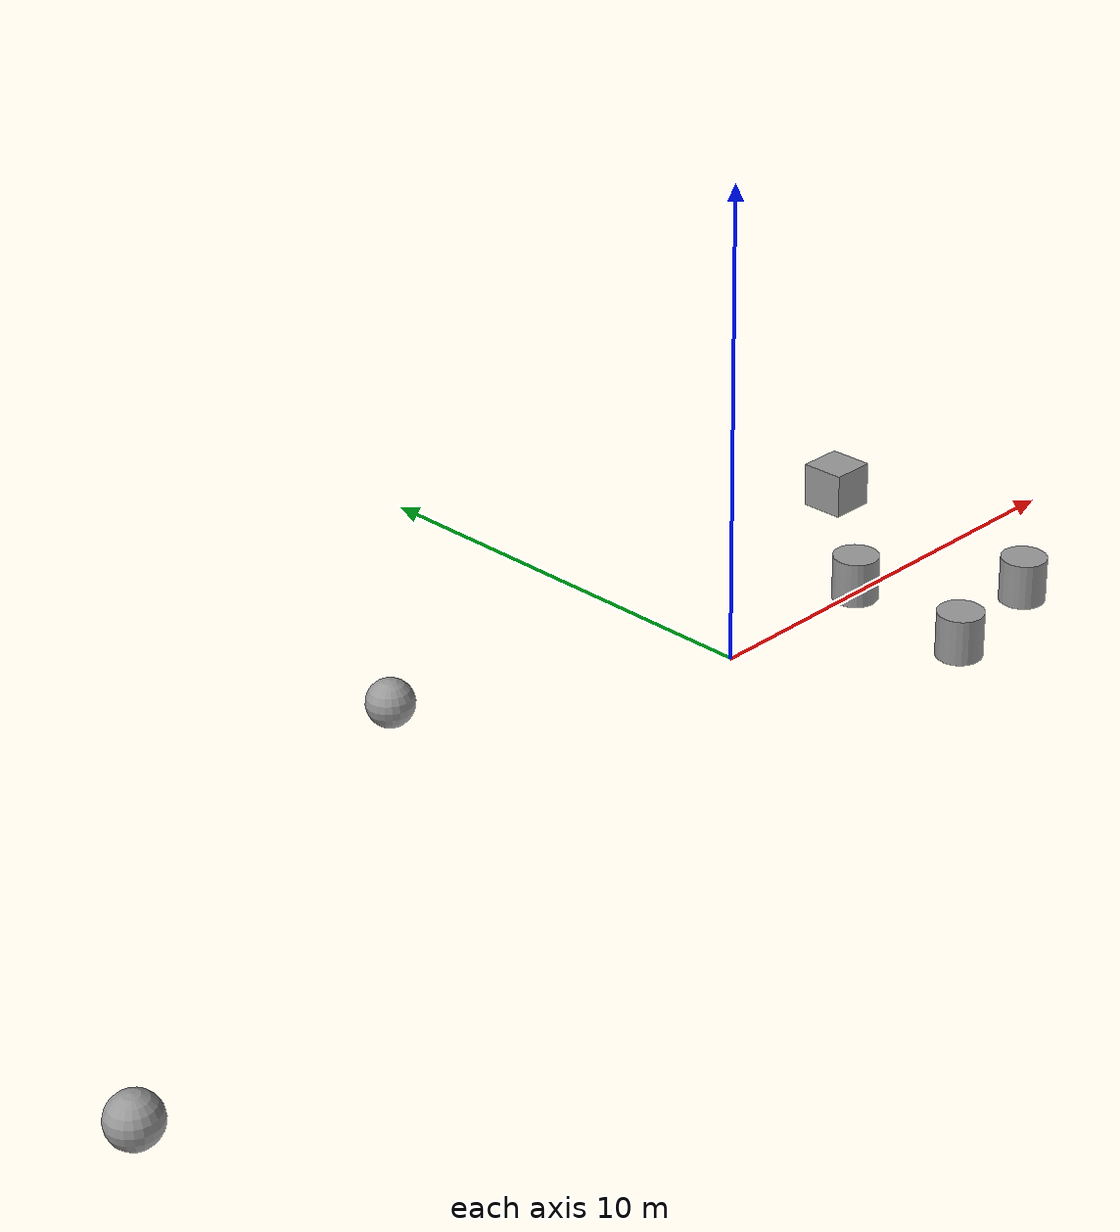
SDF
<?xml version='1.0'?>
<sdf version='1.7'>
  <model name='test'>
    <link name='link_0'>
      <inertial>
        <mass>1</mass>
        <inertia>
          <ixx>0.145833</ixx>
          <ixy>0</ixy>
          <ixz>0</ixz>
          <iyy>0.145833</iyy>
          <iyz>0</iyz>
          <izz>0.125</izz>
        </inertia>
      </inertial>
      <pose>4.44532 0.504832 0 0 -0 0</pose>
      <visual name='visual'>
        <pose>0 0 0 0 -0 0</pose>
        <geometry>
          <cylinder>
            <radius>0.5</radius>
            <length>1</length>
          </cylinder>
        </geometry>
        <material>
          <lighting>1</lighting>
          <script>
            <uri>file://media/materials/scripts/gazebo.material</uri>
            <name>Gazebo/Grey</name>
          </script>
          <shader type='pixel'/>
        </material>
        <transparency>0</transparency>
        <cast_shadows>1</cast_shadows>
      </visual>
      <collision name='collision'>
        <laser_retro>0</laser_retro>
        <max_contacts>10</max_contacts>
        <pose>0 0 0 0 -0 0</pose>
        <geometry>
          <cylinder>
            <radius>0.5</radius>
            <length>1</length>
          </cylinder>
        </geometry>
        <surface>
          <friction>
            <ode>
              <mu>1</mu>
              <mu2>1</mu2>
              <fdir1>0 0 0</fdir1>
              <slip1>0</slip1>
              <slip2>0</slip2>
            </ode>
            <torsional>
              <coefficient>1</coefficient>
              <patch_radius>0</patch_radius>
              <surface_radius>0</surface_radius>
              <use_patch_radius>1</use_patch_radius>
              <ode>
                <slip>0</slip>
              </ode>
            </torsional>
          </friction>
          <bounce>
            <restitution_coefficient>0</restitution_coefficient>
            <threshold>1e+06</threshold>
          </bounce>
          <contact>
            <collide_without_contact>0</collide_without_contact>
            <collide_without_contact_bitmask>1</collide_without_contact_bitmask>
            <collide_bitmask>1</collide_bitmask>
            <ode>
              <soft_cfm>0</soft_cfm>
              <soft_erp>0.2</soft_erp>
              <kp>1e+13</kp>
              <kd>1</kd>
              <max_vel>0.01</max_vel>
              <min_depth>0</min_depth>
            </ode>
            <bullet>
              <split_impulse>1</split_impulse>
              <split_impulse_penetration_threshold>-0.01</split_impulse_penetration_threshold>
              <soft_cfm>0</soft_cfm>
              <soft_erp>0.2</soft_erp>
              <kp>1e+13</kp>
              <kd>1</kd>
            </bullet>
          </contact>
        </surface>
      </collision>
    </link>
    <link name='link_1'>
      <inertial>
        <mass>1</mass>
        <inertia>
          <ixx>0.145833</ixx>
          <ixy>0</ixy>
          <ixz>0</ixz>
          <iyy>0.145833</iyy>
          <iyz>0</iyz>
          <izz>0.125</izz>
        </inertia>
      </inertial>
      <pose>6.82495 -2.12202 0 0 -0 0</pose>
      <visual name='visual'>
        <pose>0 0 0 0 -0 0</pose>
        <geometry>
          <cylinder>
            <radius>0.5</radius>
            <length>1</length>
          </cylinder>
        </geometry>
        <material>
          <lighting>1</lighting>
          <script>
            <uri>file://media/materials/scripts/gazebo.material</uri>
            <name>Gazebo/Grey</name>
          </script>
          <shader type='pixel'/>
        </material>
        <transparency>0</transparency>
        <cast_shadows>1</cast_shadows>
      </visual>
      <collision name='collision'>
        <laser_retro>0</laser_retro>
        <max_contacts>10</max_contacts>
        <pose>0 0 0 0 -0 0</pose>
        <geometry>
          <cylinder>
            <radius>0.5</radius>
            <length>1</length>
          </cylinder>
        </geometry>
        <surface>
          <friction>
            <ode>
              <mu>1</mu>
              <mu2>1</mu2>
              <fdir1>0 0 0</fdir1>
              <slip1>0</slip1>
              <slip2>0</slip2>
            </ode>
            <torsional>
              <coefficient>1</coefficient>
              <patch_radius>0</patch_radius>
              <surface_radius>0</surface_radius>
              <use_patch_radius>1</use_patch_radius>
              <ode>
                <slip>0</slip>
              </ode>
            </torsional>
          </friction>
          <bounce>
            <restitution_coefficient>0</restitution_coefficient>
            <threshold>1e+06</threshold>
          </bounce>
          <contact>
            <collide_without_contact>0</collide_without_contact>
            <collide_without_contact_bitmask>1</collide_without_contact_bitmask>
            <collide_bitmask>1</collide_bitmask>
            <ode>
              <soft_cfm>0</soft_cfm>
              <soft_erp>0.2</soft_erp>
              <kp>1e+13</kp>
              <kd>1</kd>
              <max_vel>0.01</max_vel>
              <min_depth>0</min_depth>
            </ode>
            <bullet>
              <split_impulse>1</split_impulse>
              <split_impulse_penetration_threshold>-0.01</split_impulse_penetration_threshold>
              <soft_cfm>0</soft_cfm>
              <soft_erp>0.2</soft_erp>
              <kp>1e+13</kp>
              <kd>1</kd>
            </bullet>
          </contact>
        </surface>
      </collision>
    </link>
    <link name='link_2'>
      <inertial>
        <mass>1</mass>
        <inertia>
          <ixx>0.145833</ixx>
          <ixy>0</ixy>
          <ixz>0</ixz>
          <iyy>0.145833</iyy>
          <iyz>0</iyz>
          <izz>0.125</izz>
        </inertia>
      </inertial>
      <pose>3.99212 -2.65955 0 0 -0 0</pose>
      <visual name='visual'>
        <pose>0 0 0 0 -0 0</pose>
        <geometry>
          <cylinder>
            <radius>0.5</radius>
            <length>1</length>
          </cylinder>
        </geometry>
        <material>
          <lighting>1</lighting>
          <script>
            <uri>file://media/materials/scripts/gazebo.material</uri>
            <name>Gazebo/Grey</name>
          </script>
          <shader type='pixel'/>
        </material>
        <transparency>0</transparency>
        <cast_shadows>1</cast_shadows>
      </visual>
      <collision name='collision'>
        <laser_retro>0</laser_retro>
        <max_contacts>10</max_contacts>
        <pose>0 0 0 0 -0 0</pose>
        <geometry>
          <cylinder>
            <radius>0.5</radius>
            <length>1</length>
          </cylinder>
        </geometry>
        <surface>
          <friction>
            <ode>
              <mu>1</mu>
              <mu2>1</mu2>
              <fdir1>0 0 0</fdir1>
              <slip1>0</slip1>
              <slip2>0</slip2>
            </ode>
            <torsional>
              <coefficient>1</coefficient>
              <patch_radius>0</patch_radius>
              <surface_radius>0</surface_radius>
              <use_patch_radius>1</use_patch_radius>
              <ode>
                <slip>0</slip>
              </ode>
            </torsional>
          </friction>
          <bounce>
            <restitution_coefficient>0</restitution_coefficient>
            <threshold>1e+06</threshold>
          </bounce>
          <contact>
            <collide_without_contact>0</collide_without_contact>
            <collide_without_contact_bitmask>1</collide_without_contact_bitmask>
            <collide_bitmask>1</collide_bitmask>
            <ode>
              <soft_cfm>0</soft_cfm>
              <soft_erp>0.2</soft_erp>
              <kp>1e+13</kp>
              <kd>1</kd>
              <max_vel>0.01</max_vel>
              <min_depth>0</min_depth>
            </ode>
            <bullet>
              <split_impulse>1</split_impulse>
              <split_impulse_penetration_threshold>-0.01</split_impulse_penetration_threshold>
              <soft_cfm>0</soft_cfm>
              <soft_erp>0.2</soft_erp>
              <kp>1e+13</kp>
              <kd>1</kd>
            </bullet>
          </contact>
        </surface>
      </collision>
    </link>
    <link name='link_4'>
      <inertial>
        <mass>1</mass>
        <inertia>
          <ixx>0.166667</ixx>
          <ixy>0</ixy>
          <ixz>0</ixz>
          <iyy>0.166667</iyy>
          <iyz>0</iyz>
          <izz>0.166667</izz>
        </inertia>
      </inertial>
      <pose>7.59812 3.7443 0 0 -0 0</pose>
      <visual name='visual'>
        <pose>0 0 0 0 -0 0</pose>
        <geometry>
          <box>
            <size>1 1 1</size>
          </box>
        </geometry>
        <material>
          <lighting>1</lighting>
          <script>
            <uri>file://media/materials/scripts/gazebo.material</uri>
            <name>Gazebo/Grey</name>
          </script>
          <shader type='pixel'/>
        </material>
        <transparency>0</transparency>
        <cast_shadows>1</cast_shadows>
      </visual>
      <collision name='collision'>
        <laser_retro>0</laser_retro>
        <max_contacts>10</max_contacts>
        <pose>0 0 0 0 -0 0</pose>
        <geometry>
          <box>
            <size>1 1 1</size>
          </box>
        </geometry>
        <surface>
          <friction>
            <ode>
              <mu>1</mu>
              <mu2>1</mu2>
              <fdir1>0 0 0</fdir1>
              <slip1>0</slip1>
              <slip2>0</slip2>
            </ode>
            <torsional>
              <coefficient>1</coefficient>
              <patch_radius>0</patch_radius>
              <surface_radius>0</surface_radius>
              <use_patch_radius>1</use_patch_radius>
              <ode>
                <slip>0</slip>
              </ode>
            </torsional>
          </friction>
          <bounce>
            <restitution_coefficient>0</restitution_coefficient>
            <threshold>1e+06</threshold>
          </bounce>
          <contact>
            <collide_without_contact>0</collide_without_contact>
            <collide_without_contact_bitmask>1</collide_without_contact_bitmask>
            <collide_bitmask>1</collide_bitmask>
            <ode>
              <soft_cfm>0</soft_cfm>
              <soft_erp>0.2</soft_erp>
              <kp>1e+13</kp>
              <kd>1</kd>
              <max_vel>0.01</max_vel>
              <min_depth>0</min_depth>
            </ode>
            <bullet>
              <split_impulse>1</split_impulse>
              <split_impulse_penetration_threshold>-0.01</split_impulse_penetration_threshold>
              <soft_cfm>0</soft_cfm>
              <soft_erp>0.2</soft_erp>
              <kp>1e+13</kp>
              <kd>1</kd>
            </bullet>
          </contact>
        </surface>
      </collision>
    </link>
    <link name='link_5'>
      <inertial>
        <mass>1</mass>
        <inertia>
          <ixx>0.1</ixx>
          <ixy>0</ixy>
          <ixz>0</ixz>
          <iyy>0.1</iyy>
          <iyz>0</iyz>
          <izz>0.1</izz>
        </inertia>
      </inertial>
      <pose>-5.86615 3.64872 0 0 -0 0</pose>
      <visual name='visual'>
        <pose>0 0 0 0 -0 0</pose>
        <geometry>
          <sphere>
            <radius>0.5</radius>
          </sphere>
        </geometry>
        <material>
          <lighting>1</lighting>
          <script>
            <uri>file://media/materials/scripts/gazebo.material</uri>
            <name>Gazebo/Grey</name>
          </script>
          <shader type='pixel'/>
        </material>
        <transparency>0</transparency>
        <cast_shadows>1</cast_shadows>
      </visual>
      <collision name='collision'>
        <laser_retro>0</laser_retro>
        <max_contacts>10</max_contacts>
        <pose>0 0 0 0 -0 0</pose>
        <geometry>
          <sphere>
            <radius>0.5</radius>
          </sphere>
        </geometry>
        <surface>
          <friction>
            <ode>
              <mu>1</mu>
              <mu2>1</mu2>
              <fdir1>0 0 0</fdir1>
              <slip1>0</slip1>
              <slip2>0</slip2>
            </ode>
            <torsional>
              <coefficient>1</coefficient>
              <patch_radius>0</patch_radius>
              <surface_radius>0</surface_radius>
              <use_patch_radius>1</use_patch_radius>
              <ode>
                <slip>0</slip>
              </ode>
            </torsional>
          </friction>
          <bounce>
            <restitution_coefficient>0</restitution_coefficient>
            <threshold>1e+06</threshold>
          </bounce>
          <contact>
            <collide_without_contact>0</collide_without_contact>
            <collide_without_contact_bitmask>1</collide_without_contact_bitmask>
            <collide_bitmask>1</collide_bitmask>
            <ode>
              <soft_cfm>0</soft_cfm>
              <soft_erp>0.2</soft_erp>
              <kp>1e+13</kp>
              <kd>1</kd>
              <max_vel>0.01</max_vel>
              <min_depth>0</min_depth>
            </ode>
            <bullet>
              <split_impulse>1</split_impulse>
              <split_impulse_penetration_threshold>-0.01</split_impulse_penetration_threshold>
              <soft_cfm>0</soft_cfm>
              <soft_erp>0.2</soft_erp>
              <kp>1e+13</kp>
              <kd>1</kd>
            </bullet>
          </contact>
        </surface>
      </collision>
    </link>
    <link name='link_6'>
      <inertial>
        <mass>1</mass>
        <inertia>
          <ixx>0.1</ixx>
          <ixy>0</ixy>
          <ixz>0</ixz>
          <iyy>0.1</iyy>
          <iyz>0</iyz>
          <izz>0.1</izz>
        </inertia>
      </inertial>
      <pose>-16.9945 -3.11625 0 0 -0 0</pose>
      <visual name='visual'>
        <pose>0 0 0 0 -0 0</pose>
        <geometry>
          <sphere>
            <radius>0.5</radius>
          </sphere>
        </geometry>
        <material>
          <lighting>1</lighting>
          <script>
            <uri>file://media/materials/scripts/gazebo.material</uri>
            <name>Gazebo/Grey</name>
          </script>
          <shader type='pixel'/>
        </material>
        <transparency>0</transparency>
        <cast_shadows>1</cast_shadows>
      </visual>
      <collision name='collision'>
        <laser_retro>0</laser_retro>
        <max_contacts>10</max_contacts>
        <pose>0 0 0 0 -0 0</pose>
        <geometry>
          <sphere>
            <radius>0.5</radius>
          </sphere>
        </geometry>
        <surface>
          <friction>
            <ode>
              <mu>1</mu>
              <mu2>1</mu2>
              <fdir1>0 0 0</fdir1>
              <slip1>0</slip1>
              <slip2>0</slip2>
            </ode>
            <torsional>
              <coefficient>1</coefficient>
              <patch_radius>0</patch_radius>
              <surface_radius>0</surface_radius>
              <use_patch_radius>1</use_patch_radius>
              <ode>
                <slip>0</slip>
              </ode>
            </torsional>
          </friction>
          <bounce>
            <restitution_coefficient>0</restitution_coefficient>
            <threshold>1e+06</threshold>
          </bounce>
          <contact>
            <collide_without_contact>0</collide_without_contact>
            <collide_without_contact_bitmask>1</collide_without_contact_bitmask>
            <collide_bitmask>1</collide_bitmask>
            <ode>
              <soft_cfm>0</soft_cfm>
              <soft_erp>0.2</soft_erp>
              <kp>1e+13</kp>
              <kd>1</kd>
              <max_vel>0.01</max_vel>
              <min_depth>0</min_depth>
            </ode>
            <bullet>
              <split_impulse>1</split_impulse>
              <split_impulse_penetration_threshold>-0.01</split_impulse_penetration_threshold>
              <soft_cfm>0</soft_cfm>
              <soft_erp>0.2</soft_erp>
              <kp>1e+13</kp>
              <kd>1</kd>
            </bullet>
          </contact>
        </surface>
      </collision>
    </link>
    <static>0</static>
    <allow_auto_disable>1</allow_auto_disable>
  </model>
</sdf>
